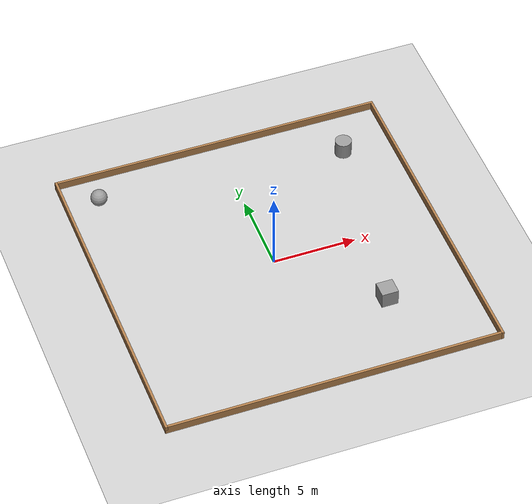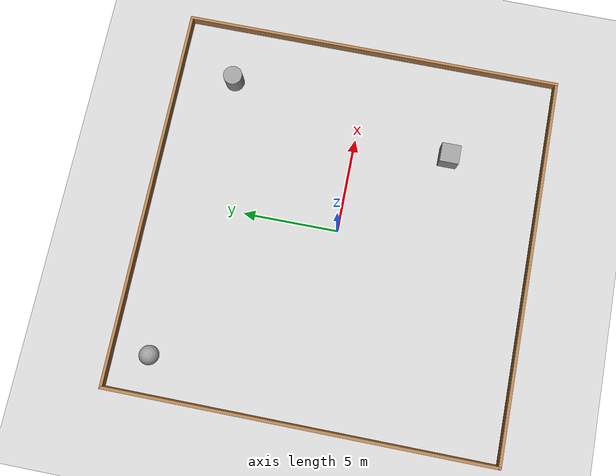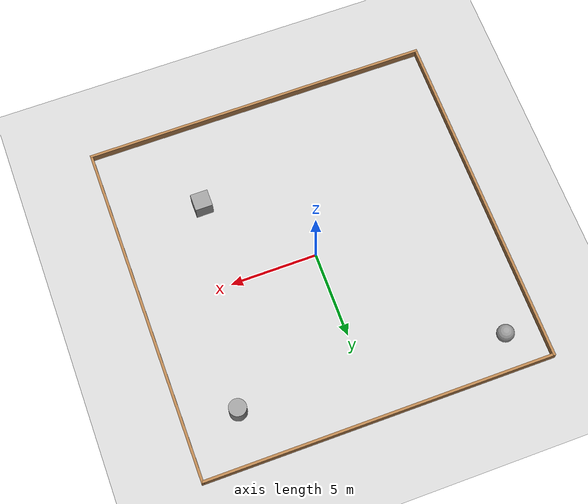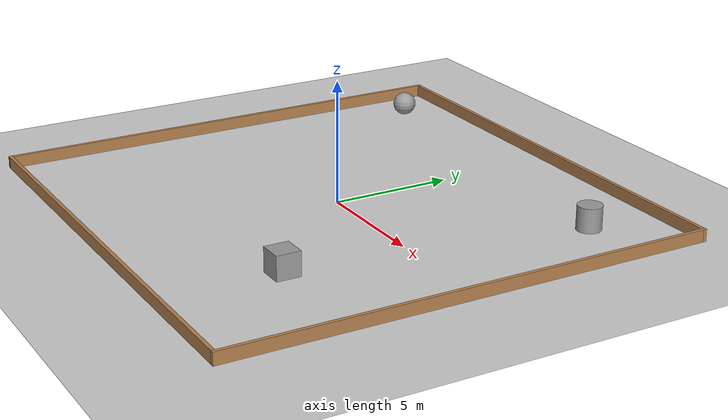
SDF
<sdf version="1.6">
 <world name="default">
  <light name="sun" type="directional">
   <pose>0 0 10 0 -0 0</pose>
   <diffuse>0.8 0.8 0.8 1</diffuse>
   <specular>0.2 0.2 0.2 1</specular>
   <attenuation>
    <range>1000</range>
    <constant>0.9</constant>
    <linear>0.01</linear>
    <quadratic>0.001</quadratic>
   </attenuation>
   <direction>-0.5 0.1 -0.9</direction>
  </light>
  <model name="ground_plane">
   <static>1</static>
   <link name="link">
    <collision name="collision">
     <geometry><plane><normal>0 0 1</normal><size>100 100</size></plane></geometry>
     <surface>
      <contact><collide_bitmask>65535</collide_bitmask></contact>
      <friction><ode><mu>100</mu><mu2>50</mu2></ode></friction>
     </surface>
    </collision>
    <visual name="visual">
     <cast_shadows>0</cast_shadows>
     <geometry><plane><normal>0 0 1</normal><size>100 100</size></plane></geometry>
     <material>
      <script><uri>file://media/materials/scripts/gazebo.material</uri><name>Gazebo/Grey</name></script>
     </material>
    </visual>
   </link>
  </model>
  <gravity>0 0 -9.8</gravity>
  <magnetic_field>6e-06 2.3e-05 -4.2e-05</magnetic_field>
  <atmosphere type="adiabatic"/>
  <physics name="default_physics" default="0" type="ode">
   <max_step_size>0.001</max_step_size>
   <real_time_factor>1</real_time_factor>
   <real_time_update_rate>1000</real_time_update_rate>
  </physics>
  <scene><ambient>0.4 0.4 0.4 1</ambient><background>0.7 0.7 0.7 1</background><shadows>1</shadows></scene>
  <audio><device>default</device></audio>
  <spherical_coordinates>
   <surface_model>EARTH_WGS84</surface_model>
   <latitude_deg>0</latitude_deg>
   <longitude_deg>0</longitude_deg>
   <elevation>0</elevation>
   <heading_deg>0</heading_deg>
  </spherical_coordinates>
  <model name="Walls">
   <link name="Wall_2">
    <collision name="Wall_2_Collision">
     <geometry><box><size>20.15 0.15 0.5</size></box></geometry>
     <pose>0 0 0.25 0 -0 0</pose>
    </collision>
    <visual name="Wall_2_Visual">
     <pose>0 0 0.25 0 -0 0</pose>
     <geometry><box><size>20.15 0.15 0.5</size></box></geometry>
     <material>
      <script><uri>file://media/materials/scripts/gazebo.material</uri><name>Gazebo/Wood</name></script>
      <ambient>1 1 1 1</ambient>
     </material>
     <meta><layer>0</layer></meta>
    </visual>
    <pose>0 -10 0 0 -0 0</pose>
   </link>
   <link name="Wall_3">
    <collision name="Wall_3_Collision">
     <geometry><box><size>20.15 0.15 0.5</size></box></geometry>
     <pose>0 0 0.25 0 -0 0</pose>
    </collision>
    <visual name="Wall_3_Visual">
     <pose>0 0 0.25 0 -0 0</pose>
     <geometry><box><size>20.15 0.15 0.5</size></box></geometry>
     <material>
      <script><uri>file://media/materials/scripts/gazebo.material</uri><name>Gazebo/Wood</name></script>
      <ambient>1 1 1 1</ambient>
     </material>
     <meta><layer>0</layer></meta>
    </visual>
    <pose>10 0 0 0 -0 1.5708</pose>
   </link>
   <link name="Wall_4">
    <collision name="Wall_4_Collision">
     <geometry><box><size>20.15 0.15 0.5</size></box></geometry>
     <pose>0 0 0.25 0 -0 0</pose>
    </collision>
    <visual name="Wall_4_Visual">
     <pose>0 0 0.25 0 -0 0</pose>
     <geometry><box><size>20.15 0.15 0.5</size></box></geometry>
     <material>
      <script><uri>file://media/materials/scripts/gazebo.material</uri><name>Gazebo/Wood</name></script>
      <ambient>1 1 1 1</ambient>
     </material>
     <meta><layer>0</layer></meta>
    </visual>
    <pose>0 10 0 0 -0 3.14159</pose>
   </link>
   <link name="Wall_5">
    <collision name="Wall_5_Collision">
     <geometry><box><size>20.15 0.15 0.5</size></box></geometry>
     <pose>0 0 0.25 0 -0 0</pose>
    </collision>
    <visual name="Wall_5_Visual">
     <pose>0 0 0.25 0 -0 0</pose>
     <geometry><box><size>20.15 0.15 0.5</size></box></geometry>
     <material>
      <script><uri>file://media/materials/scripts/gazebo.material</uri><name>Gazebo/Wood</name></script>
      <ambient>1 1 1 1</ambient>
     </material>
     <meta><layer>0</layer></meta>
    </visual>
    <pose>-10 0 0 0 -0 -1.5708</pose>
   </link>
   <static>1</static>
  </model>
  <model name="Models">
   <link name="link_0">
    <inertial>
     <mass>1</mass>
     <inertia><ixx>0.145833</ixx><ixy>0</ixy><ixz>0</ixz><iyy>0.145833</iyy><iyz>0</iyz><izz>0.125</izz></inertia>
    </inertial>
    <pose>5.66667 3.66667 0 0 -0 0</pose>
    <visual name="visual">
     <geometry><cylinder><radius>0.5</radius><length>1</length></cylinder></geometry>
     <material>
      <lighting>1</lighting>
      <script><uri>file://media/materials/scripts/gazebo.material</uri><name>Gazebo/Grey</name></script>
      <shader type="vertex"><normal_map>__default__</normal_map></shader>
      <ambient>0.3 0.3 0.3 1</ambient>
      <diffuse>0.7 0.7 0.7 1</diffuse>
      <specular>0.01 0.01 0.01 1</specular>
      <emissive>0 0 0 1</emissive>
     </material>
    </visual>
    <collision name="collision">
     <geometry><cylinder><radius>0.5</radius><length>1</length></cylinder></geometry>
     <surface>
      <friction>
       <ode><mu>1</mu><mu2>1</mu2><fdir1>0 0 0</fdir1><slip1>0</slip1><slip2>0</slip2></ode>
       <torsional>
        <coefficient>1</coefficient>
        <patch_radius>0</patch_radius>
        <surface_radius>0</surface_radius>
        <use_patch_radius>1</use_patch_radius>
        <ode><slip>0</slip></ode>
       </torsional>
      </friction>
      <bounce><restitution_coefficient>0</restitution_coefficient><threshold>1e+06</threshold></bounce>
      <contact>
       <collide_without_contact>0</collide_without_contact>
       <collide_without_contact_bitmask>1</collide_without_contact_bitmask>
       <collide_bitmask>1</collide_bitmask>
       <ode>
        <soft_cfm>0</soft_cfm>
        <soft_erp>0.2</soft_erp>
        <kp>1e+13</kp>
        <kd>1</kd>
        <max_vel>0.01</max_vel>
        <min_depth>0</min_depth>
       </ode>
       <bullet>
        <split_impulse>1</split_impulse>
        <split_impulse_penetration_threshold>-0.01</split_impulse_penetration_threshold>
        <soft_cfm>0</soft_cfm>
        <soft_erp>0.2</soft_erp>
        <kp>1e+13</kp>
        <kd>1</kd>
       </bullet>
      </contact>
     </surface>
    </collision>
   </link>
   <link name="link_1">
    <inertial>
     <mass>1</mass>
     <inertia>
      <ixx>0.166667</ixx>
      <ixy>0</ixy>
      <ixz>0</ixz>
      <iyy>0.166667</iyy>
      <iyz>0</iyz>
      <izz>0.166667</izz>
     </inertia>
    </inertial>
    <pose>3.66667 -8.33333 0 0 -0 0</pose>
    <visual name="visual">
     <geometry><box><size>1 1 1</size></box></geometry>
     <material>
      <lighting>1</lighting>
      <script><uri>file://media/materials/scripts/gazebo.material</uri><name>Gazebo/Grey</name></script>
      <shader type="vertex"><normal_map>__default__</normal_map></shader>
      <ambient>0.3 0.3 0.3 1</ambient>
      <diffuse>0.7 0.7 0.7 1</diffuse>
      <specular>0.01 0.01 0.01 1</specular>
      <emissive>0 0 0 1</emissive>
     </material>
    </visual>
    <collision name="collision">
     <geometry><box><size>1 1 1</size></box></geometry>
     <surface>
      <friction>
       <ode><mu>1</mu><mu2>1</mu2><fdir1>0 0 0</fdir1><slip1>0</slip1><slip2>0</slip2></ode>
       <torsional>
        <coefficient>1</coefficient>
        <patch_radius>0</patch_radius>
        <surface_radius>0</surface_radius>
        <use_patch_radius>1</use_patch_radius>
        <ode><slip>0</slip></ode>
       </torsional>
      </friction>
      <bounce><restitution_coefficient>0</restitution_coefficient><threshold>1e+06</threshold></bounce>
      <contact>
       <collide_without_contact>0</collide_without_contact>
       <collide_without_contact_bitmask>1</collide_without_contact_bitmask>
       <collide_bitmask>1</collide_bitmask>
       <ode>
        <soft_cfm>0</soft_cfm>
        <soft_erp>0.2</soft_erp>
        <kp>1e+13</kp>
        <kd>1</kd>
        <max_vel>0.01</max_vel>
        <min_depth>0</min_depth>
       </ode>
       <bullet>
        <split_impulse>1</split_impulse>
        <split_impulse_penetration_threshold>-0.01</split_impulse_penetration_threshold>
        <soft_cfm>0</soft_cfm>
        <soft_erp>0.2</soft_erp>
        <kp>1e+13</kp>
        <kd>1</kd>
       </bullet>
      </contact>
     </surface>
    </collision>
   </link>
   <link name="link_2">
    <inertial>
     <mass>1</mass>
     <inertia><ixx>0.1</ixx><ixy>0</ixy><ixz>0</ixz><iyy>0.1</iyy><iyz>0</iyz><izz>0.1</izz></inertia>
    </inertial>
    <pose>-9.33333 4.66667 0 0 -0 0</pose>
    <visual name="visual">
     <geometry><sphere><radius>0.5</radius></sphere></geometry>
     <material>
      <lighting>1</lighting>
      <script><uri>file://media/materials/scripts/gazebo.material</uri><name>Gazebo/Grey</name></script>
      <shader type="vertex"><normal_map>__default__</normal_map></shader>
      <ambient>0.3 0.3 0.3 1</ambient>
      <diffuse>0.7 0.7 0.7 1</diffuse>
      <specular>0.01 0.01 0.01 1</specular>
      <emissive>0 0 0 1</emissive>
     </material>
    </visual>
    <collision name="collision">
     <geometry><sphere><radius>0.5</radius></sphere></geometry>
     <surface>
      <friction>
       <ode><mu>1</mu><mu2>1</mu2><fdir1>0 0 0</fdir1><slip1>0</slip1><slip2>0</slip2></ode>
       <torsional>
        <coefficient>1</coefficient>
        <patch_radius>0</patch_radius>
        <surface_radius>0</surface_radius>
        <use_patch_radius>1</use_patch_radius>
        <ode><slip>0</slip></ode>
       </torsional>
      </friction>
      <bounce><restitution_coefficient>0</restitution_coefficient><threshold>1e+06</threshold></bounce>
      <contact>
       <collide_without_contact>0</collide_without_contact>
       <collide_without_contact_bitmask>1</collide_without_contact_bitmask>
       <collide_bitmask>1</collide_bitmask>
       <ode>
        <soft_cfm>0</soft_cfm>
        <soft_erp>0.2</soft_erp>
        <kp>1e+13</kp>
        <kd>1</kd>
        <max_vel>0.01</max_vel>
        <min_depth>0</min_depth>
       </ode>
       <bullet>
        <split_impulse>1</split_impulse>
        <split_impulse_penetration_threshold>-0.01</split_impulse_penetration_threshold>
        <soft_cfm>0</soft_cfm>
        <soft_erp>0.2</soft_erp>
        <kp>1e+13</kp>
        <kd>1</kd>
       </bullet>
      </contact>
     </surface>
    </collision>
   </link>
   <static>0</static>
   <pose>1.33333 3.33333 0.5 0 -0 0</pose>
  </model>
 </world>
</sdf>
